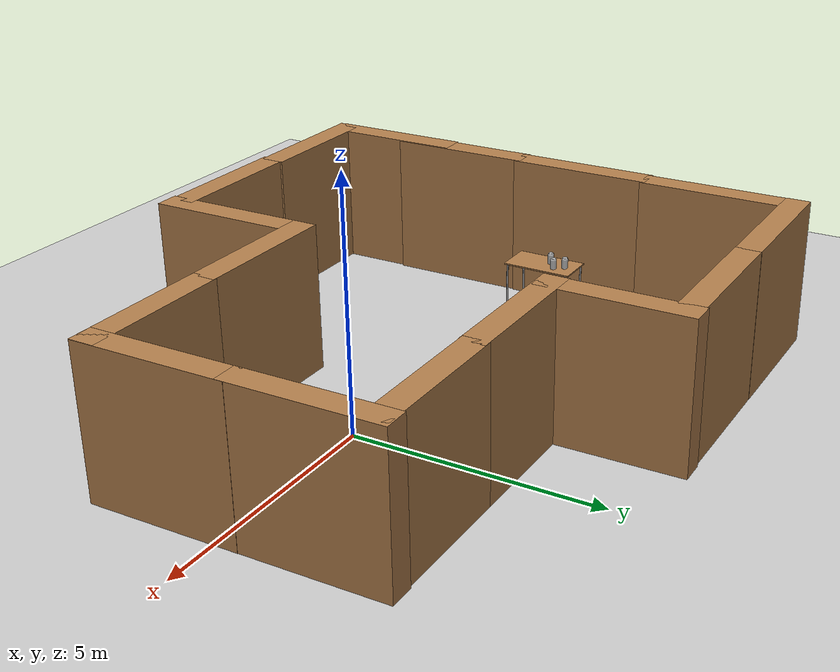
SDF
<sdf version="1.9">
 <world name="empty">
  <physics name="4ms" type="ode">
   <max_step_size>0.004</max_step_size>
   <real_time_factor>1</real_time_factor>
   <real_time_update_rate>250</real_time_update_rate>
  </physics>
  <plugin name="gz::sim::systems::Physics" filename="gz-sim-physics-system"/>
  <plugin name="gz::sim::systems::UserCommands" filename="gz-sim-user-commands-system"/>
  <plugin name="gz::sim::systems::SceneBroadcaster" filename="gz-sim-scene-broadcaster-system"/>
  <plugin name="gz::sim::systems::Contact" filename="gz-sim-contact-system"/>
  <plugin filename="gz-sim-sensors-system" name="gz::sim::systems::Sensors">
   <render_engine>ogre2</render_engine>
  </plugin>
  <plugin filename="gz-sim-imu-system" name="gz::sim::systems::Imu"/>
  <plugin filename="gz-sim-navsat-system" name="gz::sim::systems::NavSat"/>
  <spherical_coordinates>
   <surface_model>EARTH_WGS84</surface_model>
   <world_frame_orientation>ENU</world_frame_orientation>
   <latitude_deg>47.478950</latitude_deg>
   <longitude_deg>19.057785</longitude_deg>
   <elevation>0</elevation>
   <heading_deg>0</heading_deg>
  </spherical_coordinates>
  <gravity>0 0 -9.8000000000000007</gravity>
  <magnetic_field>5.5644999999999998e-06 2.2875799999999999e-05 -4.2388400000000002e-05</magnetic_field>
  <atmosphere type="adiabatic"/>
  <scene>
   <ambient>0.400000006 0.400000006 0.400000006 1</ambient>
   <background>0.699999988 0.699999988 0.699999988 1</background>
   <shadows>true</shadows>
  </scene>
  <model name="ground_plane">
   <static>true</static>
   <link name="link">
    <collision name="collision">
     <geometry><plane><normal>0 0 1</normal><size>100 100</size></plane></geometry>
     <surface><friction><ode><mu>50</mu></ode></friction></surface>
    </collision>
    <visual name="visual">
     <geometry><plane><normal>0 0 1</normal><size>100 100</size></plane></geometry>
     <material>
      <ambient>0.800000012 0.800000012 0.800000012 1</ambient>
      <diffuse>0.800000012 0.800000012 0.800000012 1</diffuse>
      <specular>0.800000012 0.800000012 0.800000012 1</specular>
     </material>
    </visual>
    <inertial>
     <mass>1</mass>
     <inertia><ixx>1</ixx><ixy>0</ixy><ixz>0</ixz><iyy>1</iyy><iyz>0</iyz><izz>1</izz></inertia>
    </inertial>
   </link>
  </model>
  <model name="brick_box_3x1x3">
   <static>true</static>
   <link name="chassis">
    <pose>0 0 1.5 0 0 0</pose>
    <collision name="collision"><geometry><box><size>3 0.5 3</size></box></geometry></collision>
    <visual name="visual">
     <geometry>
      <mesh><uri>model://brick_box_3x1x3/meshes/simple_box.dae</uri><scale>3 0.5 3</scale></mesh>
     </geometry>
     <material>
      <diffuse>1 1 1 1</diffuse>
      <script><uri>file://media/materials/scripts/gazebo.material</uri><name>Gazebo/Wood</name></script>
      <pbr><metal><albedo_map>model://brick_box_3x1x3/materials/textures/simple_box.png</albedo_map></metal></pbr>
     </material>
    </visual>
    <inertial>
     <mass>1</mass>
     <inertia><ixx>1</ixx><ixy>0</ixy><ixz>0</ixz><iyy>1</iyy><iyz>0</iyz><izz>1</izz></inertia>
    </inertial>
   </link>
   <pose>2.4319996024854618 -2.2903992412186112 0 0 0 0</pose>
  </model>
  <model name="brick_box_3x1x3_0">
   <static>true</static>
   <link name="chassis">
    <pose>0 0 1.5 0 0 0</pose>
    <collision name="collision"><geometry><box><size>3 0.5 3</size></box></geometry></collision>
    <visual name="visual">
     <geometry>
      <mesh><uri>model://brick_box_3x1x3/meshes/simple_box.dae</uri><scale>3 0.5 3</scale></mesh>
     </geometry>
     <material>
      <diffuse>1 1 1 1</diffuse>
      <script><uri>file://media/materials/scripts/gazebo.material</uri><name>Gazebo/Wood</name></script>
      <pbr><metal><albedo_map>model://brick_box_3x1x3/materials/textures/simple_box.png</albedo_map></metal></pbr>
     </material>
    </visual>
    <inertial>
     <mass>1</mass>
     <inertia><ixx>1</ixx><ixy>0</ixy><ixz>0</ixz><iyy>1</iyy><iyz>0</iyz><izz>1</izz></inertia>
    </inertial>
   </link>
   <pose>-0.49451759310992571 -2.2935768706553676 0 0 0 0</pose>
  </model>
  <model name="brick_box_3x1x3_1">
   <static>true</static>
   <link name="chassis">
    <pose>0 0 1.5 0 0 0</pose>
    <collision name="collision"><geometry><box><size>3 0.5 3</size></box></geometry></collision>
    <visual name="visual">
     <geometry>
      <mesh><uri>model://brick_box_3x1x3/meshes/simple_box.dae</uri><scale>3 0.5 3</scale></mesh>
     </geometry>
     <material>
      <diffuse>1 1 1 1</diffuse>
      <script><uri>file://media/materials/scripts/gazebo.material</uri><name>Gazebo/Wood</name></script>
      <pbr><metal><albedo_map>model://brick_box_3x1x3/materials/textures/simple_box.png</albedo_map></metal></pbr>
     </material>
    </visual>
    <inertial>
     <mass>1</mass>
     <inertia><ixx>1</ixx><ixy>0</ixy><ixz>0</ixz><iyy>1</iyy><iyz>0</iyz><izz>1</izz></inertia>
    </inertial>
   </link>
   <pose>3.6798675060272212 -1.0327010154724123 0 0 0 -1.5613300857827082</pose>
  </model>
  <model name="brick_box_3x1x3_1_1">
   <static>true</static>
   <link name="chassis">
    <pose>0 0 1.5 0 0 0</pose>
    <collision name="collision"><geometry><box><size>3 0.5 3</size></box></geometry></collision>
    <visual name="visual">
     <geometry>
      <mesh><uri>model://brick_box_3x1x3/meshes/simple_box.dae</uri><scale>3 0.5 3</scale></mesh>
     </geometry>
     <material>
      <diffuse>1 1 1 1</diffuse>
      <script><uri>file://media/materials/scripts/gazebo.material</uri><name>Gazebo/Wood</name></script>
      <pbr><metal><albedo_map>model://brick_box_3x1x3/materials/textures/simple_box.png</albedo_map></metal></pbr>
     </material>
    </visual>
   </link>
   <pose>3.6491325663735519 1.7995706376102865 0 0 0 -1.5613300857827082</pose>
  </model>
  <model name="brick_box_3x1x3_1_2">
   <static>true</static>
   <link name="chassis">
    <pose>0 0 1.5 0 0 0</pose>
    <collision name="collision"><geometry><box><size>3 0.5 3</size></box></geometry></collision>
    <visual name="visual">
     <geometry>
      <mesh><uri>model://brick_box_3x1x3/meshes/simple_box.dae</uri><scale>3 0.5 3</scale></mesh>
     </geometry>
     <material>
      <diffuse>1 1 1 1</diffuse>
      <script><uri>file://media/materials/scripts/gazebo.material</uri><name>Gazebo/Wood</name></script>
      <pbr><metal><albedo_map>model://brick_box_3x1x3/materials/textures/simple_box.png</albedo_map></metal></pbr>
     </material>
    </visual>
   </link>
   <pose>-1.7256188946260851 -3.9228607249689302 0 0 0 -1.5613300857827082</pose>
  </model>
  <model name="brick_box_3x1x3_2">
   <static>true</static>
   <link name="chassis">
    <pose>0 0 1.5 0 0 0</pose>
    <collision name="collision"><geometry><box><size>3 0.5 3</size></box></geometry></collision>
    <visual name="visual">
     <geometry>
      <mesh><uri>model://brick_box_3x1x3/meshes/simple_box.dae</uri><scale>3 0.5 3</scale></mesh>
     </geometry>
     <material>
      <diffuse>1 1 1 1</diffuse>
      <script><uri>file://media/materials/scripts/gazebo.material</uri><name>Gazebo/Wood</name></script>
      <pbr><metal><albedo_map>model://brick_box_3x1x3/materials/textures/simple_box.png</albedo_map></metal></pbr>
     </material>
    </visual>
   </link>
   <pose>2.367208345143013 3.0191647593704176 0 0 0 0</pose>
  </model>
  <model name="brick_box_3x1x3_3">
   <static>true</static>
   <link name="chassis">
    <pose>0 0 1.5 0 0 0</pose>
    <collision name="collision"><geometry><box><size>3 0.5 3</size></box></geometry></collision>
    <visual name="visual">
     <geometry>
      <mesh><uri>model://brick_box_3x1x3/meshes/simple_box.dae</uri><scale>3 0.5 3</scale></mesh>
     </geometry>
     <material>
      <diffuse>1 1 1 1</diffuse>
      <script><uri>file://media/materials/scripts/gazebo.material</uri><name>Gazebo/Wood</name></script>
      <pbr><metal><albedo_map>model://brick_box_3x1x3/materials/textures/simple_box.png</albedo_map></metal></pbr>
     </material>
    </visual>
   </link>
   <pose>-0.47985913426359517 3.0113767072165807 0 0 0 0</pose>
  </model>
  <model name="brick_box_3x1x3_1_2_1">
   <static>true</static>
   <link name="chassis">
    <pose>0 0 1.5 0 0 0</pose>
    <collision name="collision"><geometry><box><size>3 0.5 3</size></box></geometry></collision>
    <visual name="visual">
     <geometry>
      <mesh><uri>model://brick_box_3x1x3/meshes/simple_box.dae</uri><scale>3 0.5 3</scale></mesh>
     </geometry>
     <material>
      <diffuse>1 1 1 1</diffuse>
      <script><uri>file://media/materials/scripts/gazebo.material</uri><name>Gazebo/Wood</name></script>
      <pbr><metal><albedo_map>model://brick_box_3x1x3/materials/textures/simple_box.png</albedo_map></metal></pbr>
     </material>
    </visual>
   </link>
   <pose>-1.720121645097815 4.2816556450992227 0 0 0 -1.5613300857827082</pose>
  </model>
  <model name="brick_box_3x1x3_4">
   <static>true</static>
   <link name="chassis">
    <pose>0 0 1.5 0 0 0</pose>
    <collision name="collision"><geometry><box><size>3 0.5 3</size></box></geometry></collision>
    <visual name="visual">
     <geometry>
      <mesh><uri>model://brick_box_3x1x3/meshes/simple_box.dae</uri><scale>3 0.5 3</scale></mesh>
     </geometry>
     <material>
      <diffuse>1 1 1 1</diffuse>
      <script><uri>file://media/materials/scripts/gazebo.material</uri><name>Gazebo/Wood</name></script>
      <pbr><metal><albedo_map>model://brick_box_3x1x3/materials/textures/simple_box.png</albedo_map></metal></pbr>
     </material>
    </visual>
   </link>
   <pose>-3.3157642156359133 -5.1308394231262895 0 0 0 0</pose>
  </model>
  <model name="brick_box_3x1x3_4_1">
   <static>true</static>
   <link name="chassis">
    <pose>0 0 1.5 0 0 0</pose>
    <collision name="collision"><geometry><box><size>3 0.5 3</size></box></geometry></collision>
    <visual name="visual">
     <geometry>
      <mesh><uri>model://brick_box_3x1x3/meshes/simple_box.dae</uri><scale>3 0.5 3</scale></mesh>
     </geometry>
     <material>
      <diffuse>1 1 1 1</diffuse>
      <script><uri>file://media/materials/scripts/gazebo.material</uri><name>Gazebo/Wood</name></script>
      <pbr><metal><albedo_map>model://brick_box_3x1x3/materials/textures/simple_box.png</albedo_map></metal></pbr>
     </material>
    </visual>
   </link>
   <pose>-3.2450852386829272 5.5000841259867235 0 0 0 0</pose>
  </model>
  <model name="brick_box_3x1x3_4_1_1">
   <static>true</static>
   <link name="chassis">
    <pose>0 0 1.5 0 0 0</pose>
    <collision name="collision"><geometry><box><size>3 0.5 3</size></box></geometry></collision>
    <visual name="visual">
     <geometry>
      <mesh><uri>model://brick_box_3x1x3/meshes/simple_box.dae</uri><scale>3 0.5 3</scale></mesh>
     </geometry>
     <material>
      <diffuse>1 1 1 1</diffuse>
      <script><uri>file://media/materials/scripts/gazebo.material</uri><name>Gazebo/Wood</name></script>
      <pbr><metal><albedo_map>model://brick_box_3x1x3/materials/textures/simple_box.png</albedo_map></metal></pbr>
     </material>
    </visual>
   </link>
   <pose>-6.2259467696728583 5.5046962291371155 0 0 0 0</pose>
  </model>
  <model name="brick_box_3x1x3_4_2">
   <static>true</static>
   <link name="chassis">
    <pose>0 0 1.5 0 0 0</pose>
    <collision name="collision"><geometry><box><size>3 0.5 3</size></box></geometry></collision>
    <visual name="visual">
     <geometry>
      <mesh><uri>model://brick_box_3x1x3/meshes/simple_box.dae</uri><scale>3 0.5 3</scale></mesh>
     </geometry>
     <material>
      <diffuse>1 1 1 1</diffuse>
      <script><uri>file://media/materials/scripts/gazebo.material</uri><name>Gazebo/Wood</name></script>
      <pbr><metal><albedo_map>model://brick_box_3x1x3/materials/textures/simple_box.png</albedo_map></metal></pbr>
     </material>
    </visual>
   </link>
   <pose>-6.2039659163898584 -5.089884327679437 0 0 0 0</pose>
  </model>
  <model name="brick_box_3x1x3_1_1_1">
   <static>true</static>
   <link name="chassis">
    <pose>0 0 1.5 0 0 0</pose>
    <collision name="collision"><geometry><box><size>3 0.5 3</size></box></geometry></collision>
    <visual name="visual">
     <geometry>
      <mesh><uri>model://brick_box_3x1x3/meshes/simple_box.dae</uri><scale>3 0.5 3</scale></mesh>
     </geometry>
     <material>
      <diffuse>1 1 1 1</diffuse>
      <script><uri>file://media/materials/scripts/gazebo.material</uri><name>Gazebo/Wood</name></script>
      <pbr><metal><albedo_map>model://brick_box_3x1x3/materials/textures/simple_box.png</albedo_map></metal></pbr>
     </material>
    </visual>
   </link>
   <pose>-7.4456487703785399 3.8350942436563935 0 0 0 -1.5613300857827082</pose>
  </model>
  <model name="brick_box_3x1x3_1_1_2">
   <static>true</static>
   <link name="chassis">
    <pose>0 0 1.5 0 0 0</pose>
    <collision name="collision"><geometry><box><size>3 0.5 3</size></box></geometry></collision>
    <visual name="visual">
     <geometry>
      <mesh><uri>model://brick_box_3x1x3/meshes/simple_box.dae</uri><scale>3 0.5 3</scale></mesh>
     </geometry>
     <material>
      <diffuse>1 1 1 1</diffuse>
      <script><uri>file://media/materials/scripts/gazebo.material</uri><name>Gazebo/Wood</name></script>
      <pbr><metal><albedo_map>model://brick_box_3x1x3/materials/textures/simple_box.png</albedo_map></metal></pbr>
     </material>
    </visual>
   </link>
   <pose>-7.4559289970456302 0.93484607885666726 0 0 0 -1.5613300857827082</pose>
  </model>
  <model name="brick_box_3x1x3_1_1_3">
   <static>true</static>
   <link name="chassis">
    <pose>0 0 1.5 0 0 0</pose>
    <collision name="collision"><geometry><box><size>3 0.5 3</size></box></geometry></collision>
    <visual name="visual">
     <geometry>
      <mesh><uri>model://brick_box_3x1x3/meshes/simple_box.dae</uri><scale>3 0.5 3</scale></mesh>
     </geometry>
     <material>
      <diffuse>1 1 1 1</diffuse>
      <script><uri>file://media/materials/scripts/gazebo.material</uri><name>Gazebo/Wood</name></script>
      <pbr><metal><albedo_map>model://brick_box_3x1x3/materials/textures/simple_box.png</albedo_map></metal></pbr>
     </material>
    </visual>
   </link>
   <pose>-7.4557270276485879 -1.9303062291546382 0 0 0 -1.5613300857827082</pose>
  </model>
  <model name="brick_box_3x1x3_1_1_4">
   <static>true</static>
   <link name="chassis">
    <pose>0 0 1.5 0 0 0</pose>
    <collision name="collision"><geometry><box><size>3 0.5 3</size></box></geometry></collision>
    <visual name="visual">
     <geometry>
      <mesh><uri>model://brick_box_3x1x3/meshes/simple_box.dae</uri><scale>3 0.5 3</scale></mesh>
     </geometry>
     <material>
      <diffuse>1 1 1 1</diffuse>
      <script><uri>file://media/materials/scripts/gazebo.material</uri><name>Gazebo/Wood</name></script>
      <pbr><metal><albedo_map>model://brick_box_3x1x3/materials/textures/simple_box.png</albedo_map></metal></pbr>
     </material>
    </visual>
   </link>
   <pose>-7.4861075560184975 -3.7500553504037182 0 0 0 -1.5613300857827082</pose>
  </model>
  <model name="LitterBin">
   <static>true</static>
   <link name="body">
    <visual name="visual">
     <geometry><mesh><uri>model://LitterBin/meshes/Litter.obj</uri></mesh></geometry>
    </visual>
    <collision name="collision">
     <geometry><mesh><uri>model://LitterBin/meshes/Litter.obj</uri></mesh></geometry>
    </collision>
    <inertial>
     <mass>1</mass>
     <inertia><ixx>1</ixx><ixy>0</ixy><ixz>0</ixz><iyy>1</iyy><iyz>0</iyz><izz>1</izz></inertia>
    </inertial>
   </link>
   <pose>-2.2667151140972259 -4.470883884396315 0 0 0 0</pose>
  </model>
  <model name="fire_hydrant">
   <static>true</static>
   <link name="link">
    <collision name="collision">
     <geometry><mesh><uri>model://fire_hydrant/meshes/fire_hydrant.dae</uri></mesh></geometry>
    </collision>
    <visual name="visual">
     <geometry><mesh><uri>model://fire_hydrant/meshes/fire_hydrant.dae</uri></mesh></geometry>
    </visual>
    <inertial>
     <mass>1</mass>
     <inertia><ixx>1</ixx><ixy>0</ixy><ixz>0</ixz><iyy>1</iyy><iyz>0</iyz><izz>1</izz></inertia>
    </inertial>
   </link>
   <pose>-2.2266750511992672 4.7437324395695386 0 0 0 0</pose>
  </model>
  <model name="Table">
   <static>true</static>
   <link name="link">
    <collision name="surface">
     <pose>0 0 1 0 0 0</pose>
     <geometry><box><size>1.5 0.80000000000000004 0.029999999999999999</size></box></geometry>
     <surface><friction><ode><mu>0.59999999999999998</mu><mu2>0.59999999999999998</mu2></ode></friction></surface>
    </collision>
    <visual name="visual1">
     <pose>0 0 1 0 0 0</pose>
     <geometry><box><size>1.5 0.80000000000000004 0.029999999999999999</size></box></geometry>
     <material>
      <diffuse>1 1 1 1</diffuse>
      <script><uri>file://media/materials/scripts/gazebo.material</uri><name>Gazebo/Wood</name></script>
      <pbr><metal><albedo_map>model://Table/Table_Diffuse.jpg</albedo_map></metal></pbr>
     </material>
    </visual>
    <collision name="front_left_leg">
     <pose>0.68000000000000005 0.38 0.5 0 0 0</pose>
     <geometry><cylinder><radius>0.02</radius><length>1</length></cylinder></geometry>
    </collision>
    <visual name="front_left_leg">
     <pose>0.68000000000000005 0.38 0.5 0 0 0</pose>
     <geometry><cylinder><radius>0.02</radius><length>1</length></cylinder></geometry>
     <material>
      <diffuse>0.5 0.5 0.5 1</diffuse>
      <script><uri>file://media/materials/scripts/gazebo.material</uri><name>Gazebo/Grey</name></script>
     </material>
    </visual>
    <collision name="front_right_leg">
     <pose>0.68000000000000005 -0.38 0.5 0 0 0</pose>
     <geometry><cylinder><radius>0.02</radius><length>1</length></cylinder></geometry>
    </collision>
    <visual name="front_right_leg">
     <pose>0.68000000000000005 -0.38 0.5 0 0 0</pose>
     <geometry><cylinder><radius>0.02</radius><length>1</length></cylinder></geometry>
     <material>
      <diffuse>0.5 0.5 0.5 1</diffuse>
      <script><uri>file://media/materials/scripts/gazebo.material</uri><name>Gazebo/Grey</name></script>
     </material>
    </visual>
    <collision name="back_right_leg">
     <pose>-0.68000000000000005 -0.38 0.5 0 0 0</pose>
     <geometry><cylinder><radius>0.02</radius><length>1</length></cylinder></geometry>
    </collision>
    <visual name="back_right_leg">
     <pose>-0.68000000000000005 -0.38 0.5 0 0 0</pose>
     <geometry><cylinder><radius>0.02</radius><length>1</length></cylinder></geometry>
     <material>
      <diffuse>0.5 0.5 0.5 1</diffuse>
      <script><uri>file://media/materials/scripts/gazebo.material</uri><name>Gazebo/Grey</name></script>
     </material>
    </visual>
    <collision name="back_left_leg">
     <pose>-0.68000000000000005 0.38 0.5 0 0 0</pose>
     <geometry><cylinder><radius>0.02</radius><length>1</length></cylinder></geometry>
    </collision>
    <visual name="back_left_leg">
     <pose>-0.68000000000000005 0.38 0.5 0 0 0</pose>
     <geometry><cylinder><radius>0.02</radius><length>1</length></cylinder></geometry>
     <material>
      <diffuse>0.5 0.5 0.5 1</diffuse>
      <script><uri>file://media/materials/scripts/gazebo.material</uri><name>Gazebo/Grey</name></script>
     </material>
    </visual>
    <inertial>
     <mass>1</mass>
     <inertia><ixx>1</ixx><ixy>0</ixy><ixz>0</ixz><iyy>1</iyy><iyz>0</iyz><izz>1</izz></inertia>
    </inertial>
   </link>
   <pose>-6.6785297393798828 0.4605319499969483 0 0 0 -1.5711199985187827</pose>
  </model>
  <include>
   <uri>model://coke_can_steel</uri>
   <name>coke_can_steel</name>
   <pose>-6.6250901222236847 0.97237497567775699 1.0147961008440121 -0.011212019890960765 0.0040288546611016093 -3.293628149503526e-05</pose>
  </include>
  <include>
   <uri>model://coke_can_steel</uri>
   <name>coke_can_steel_1</name>
   <pose>-6.4818402138265592 0.77228682869897081 1.0147962202323135 -0.011212018571084675 0.004028854362532492 -3.2936373342153726e-05</pose>
  </include>
  <include>
   <uri>model://coke_can_steel</uri>
   <name>coke_can_steel_2</name>
   <pose>-6.7145872241327291 0.60093759938907021 1.0147962202323135 -0.011212018571084673 0.0040288543625325076 -3.2936373342153814e-05</pose>
  </include>
  <light name="sun" type="directional">
   <pose>0 0 10 0 0 0</pose>
   <intensity>1</intensity>
   <direction>-0.5 0.10000000000000001 -0.90000000000000002</direction>
   <diffuse>0.800000012 0.800000012 0.800000012 1</diffuse>
   <specular>0.200000003 0.200000003 0.200000003 1</specular>
   <attenuation>
    <range>1000</range>
    <linear>0.0099999997764825821</linear>
    <constant>0.89999997615814209</constant>
    <quadratic>0.0010000000474974513</quadratic>
   </attenuation>
   <spot><inner_angle>0</inner_angle><outer_angle>0</outer_angle><falloff>0</falloff></spot>
  </light>
 </world>
</sdf>

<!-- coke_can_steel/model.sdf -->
<sdf version="1.6" xmlns:surface_props="https://github.com/Field-Robotics-Lab/dave">
  <model name="coke_can_steel">
    <link name="link">
      <inertial>
        <pose>0 0 0 0 0 0</pose>
        <mass>1000.0</mass>
        <inertia>
          <ixx>0.083</ixx>
          <ixy>0.0</ixy>
          <ixz>0.0</ixz>
          <iyy>0.083</iyy>
          <iyz>0.0</iyz>
          <izz>0.083</izz>
        </inertia>
      </inertial>
      <collision name="collision">
        <geometry>
          <mesh>
            <uri>model://coke_can_steel/meshes/coke_can.obj</uri>
            <scale>2 2 2</scale>
          </mesh>
        </geometry>
      </collision>
      <visual name="visual">
        <geometry>
          <mesh>
            <uri>model://coke_can_steel/meshes/coke_can.obj</uri>
            <scale>2 2 2</scale>
          </mesh>
        </geometry>
      </visual>
    </link>
    <!-- Custom SDF elements for surface properties -->
    <surface_props:material>metal</surface_props:material>
    <surface_props:biofouling_rating>0</surface_props:biofouling_rating>
    <surface_props:roughness>0.0</surface_props:roughness>
  </model>
</sdf>
